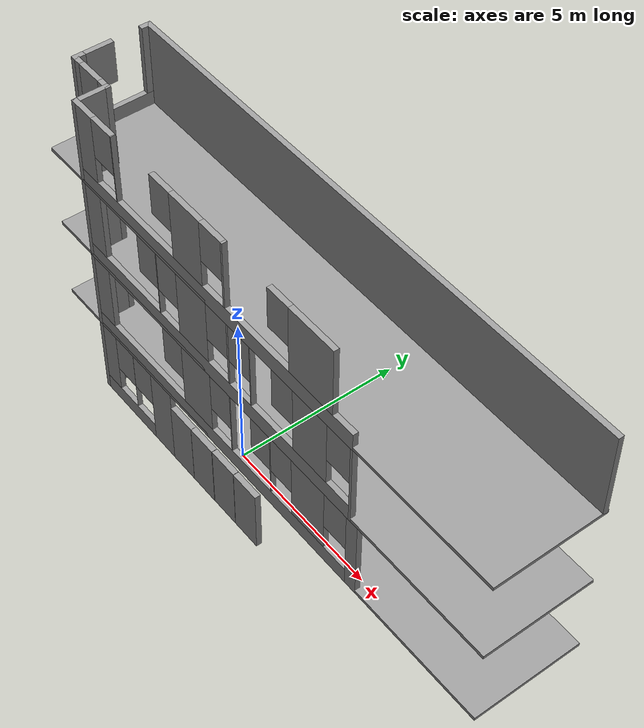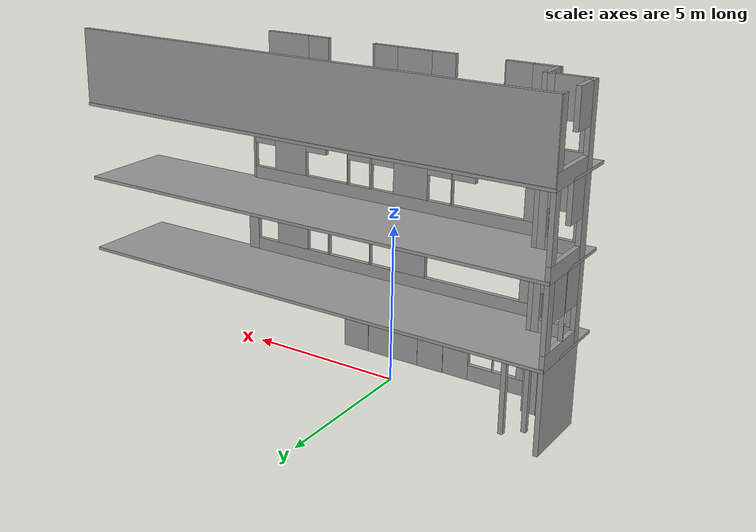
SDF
<sdf version="1.7">
 <model name="multimedia">
  <pose>2.48328 0.104264 0 0 -0 0</pose>
  <link name="Door_0">
   <collision name="Door_0_Collision">
    <geometry><box><size>0.9 0.17 2</size></box></geometry>
    <pose>0 0 1 0 -0 0</pose>
   </collision>
   <visual name="Door_0_Visual">
    <pose>0 0 1 0 -0 0</pose>
    <geometry><box><size>0.9 0.17 2</size></box></geometry>
    <material>
     <script><uri>file://media/materials/scripts/gazebo.material</uri><name>Gazebo/Grey</name></script>
    </material>
   </visual>
   <pose>-1.282 -1.47629 0 0 -0 0</pose>
  </link>
  <link name="Door_1">
   <collision name="Door_1_Collision">
    <geometry><box><size>0.9 0.17 2</size></box></geometry>
    <pose>0 0 1 0 -0 0</pose>
   </collision>
   <visual name="Door_1_Visual">
    <pose>0 0 1 0 -0 0</pose>
    <geometry><box><size>0.9 0.17 2</size></box></geometry>
    <material>
     <script><uri>file://media/materials/scripts/gazebo.material</uri><name>Gazebo/Grey</name></script>
    </material>
   </visual>
   <pose>-0.371814 -1.47629 0 0 -0 0</pose>
  </link>
  <link name="Door_2">
   <collision name="Door_2_Collision">
    <geometry><box><size>0.9 0.17 2</size></box></geometry>
    <pose>0 0 1 0 -0 0</pose>
   </collision>
   <visual name="Door_2_Visual">
    <pose>0 0 1 0 -0 0</pose>
    <geometry><box><size>0.9 0.17 2</size></box></geometry>
    <material>
     <script><uri>file://media/materials/scripts/gazebo.material</uri><name>Gazebo/Grey</name></script>
    </material>
   </visual>
   <pose>-2.19409 -1.48027 0 0 -0 0</pose>
  </link>
  <link name="Door_4">
   <collision name="Door_4_Collision">
    <geometry><box><size>0.9 0.17 2</size></box></geometry>
    <pose>0 0 1 0 -0 0</pose>
   </collision>
   <visual name="Door_4_Visual">
    <pose>0 0 1 0 -0 0</pose>
    <geometry><box><size>0.9 0.17 2</size></box></geometry>
    <material>
     <script><uri>file://media/materials/scripts/gazebo.material</uri><name>Gazebo/Grey</name></script>
    </material>
   </visual>
   <pose>-3.09844 -1.48027 0 0 -0 0</pose>
  </link>
  <link name="Door_8">
   <collision name="Door_8_Collision">
    <geometry><box><size>0.9 0.17 2</size></box></geometry>
    <pose>0 0 1 0 -0 0</pose>
   </collision>
   <visual name="Door_8_Visual">
    <pose>0 0 1 0 -0 0</pose>
    <geometry><box><size>0.9 0.17 2</size></box></geometry>
    <material>
     <script><uri>file://media/materials/scripts/gazebo.material</uri><name>Gazebo/Grey</name></script>
    </material>
   </visual>
   <pose>-7.53633 -0.624894 0 0 -0 0</pose>
  </link>
  <link name="Floor_10">
   <collision name="Floor_10_Collision">
    <geometry><box><size>16.2759 3.1264 0.1</size></box></geometry>
    <pose>0 0 0.05 0 -0 0</pose>
   </collision>
   <visual name="Floor_10_Visual">
    <pose>0 0 0.05 0 -0 0</pose>
    <geometry><box><size>16.2759 3.1264 0.1</size></box></geometry>
    <material>
     <script><uri>file://media/materials/scripts/gazebo.material</uri><name>Gazebo/Grey</name></script>
     <ambient>1 1 1 1</ambient>
    </material>
    <meta><layer>1</layer></meta>
   </visual>
   <pose>0 -0 2.5 0 -0 0</pose>
  </link>
  <link name="Floor_11">
   <collision name="Floor_11_Collision">
    <geometry><box><size>16.2759 3.1264 0.1</size></box></geometry>
    <pose>0 0 0.05 0 -0 0</pose>
   </collision>
   <visual name="Floor_11_Visual">
    <pose>0 0 0.05 0 -0 0</pose>
    <geometry><box><size>16.2759 3.1264 0.1</size></box></geometry>
    <material>
     <script><uri>file://media/materials/scripts/gazebo.material</uri><name>Gazebo/Grey</name></script>
     <ambient>1 1 1 1</ambient>
    </material>
    <meta><layer>2</layer></meta>
   </visual>
   <pose>0 -0 5 0 -0 0</pose>
  </link>
  <link name="Floor_12">
   <collision name="Floor_12_Collision">
    <geometry><box><size>16.2759 3.1264 0.1</size></box></geometry>
    <pose>0 0 0.05 0 -0 0</pose>
   </collision>
   <visual name="Floor_12_Visual">
    <pose>0 0 0.05 0 -0 0</pose>
    <geometry><box><size>16.2759 3.1264 0.1</size></box></geometry>
    <material>
     <script><uri>file://media/materials/scripts/gazebo.material</uri><name>Gazebo/Grey</name></script>
     <ambient>1 1 1 1</ambient>
    </material>
    <meta><layer>3</layer></meta>
   </visual>
   <pose>0 -0 7.5 0 -0 0</pose>
  </link>
  <link name="Wall_100">
   <collision name="Wall_100_Collision">
    <geometry><box><size>16.25 0.15 2.5</size></box></geometry>
    <pose>0 0 1.25 0 -0 0</pose>
   </collision>
   <visual name="Wall_100_Visual">
    <pose>0 0 1.25 0 -0 0</pose>
    <geometry><box><size>16.25 0.15 2.5</size></box></geometry>
    <material>
     <script><uri>file://media/materials/scripts/gazebo.material</uri><name>Gazebo/Grey</name></script>
     <ambient>1 1 1 1</ambient>
    </material>
    <meta><layer>3</layer></meta>
   </visual>
   <pose>0.012948 1.46405 7.5 0 -0 3.14159</pose>
  </link>
  <link name="Wall_101">
   <pose>-1.5307 -1.4882 7.5 0 -0 3.14159</pose>
   <visual name="Wall_101_Visual_0">
    <pose>0 0 0.25 0 -0 0</pose>
    <geometry><box><size>10.5 0.15 0.5</size></box></geometry>
    <material>
     <script><uri>file://media/materials/scripts/gazebo.material</uri><name>Gazebo/Grey</name></script>
     <ambient>1 1 1 1</ambient>
    </material>
    <meta><layer>3</layer></meta>
   </visual>
   <collision name="Wall_101_Collision_0">
    <geometry><box><size>10.5 0.15 0.5</size></box></geometry>
    <pose>0 0 0.25 0 -0 0</pose>
   </collision>
   <visual name="Wall_101_Visual_1">
    <pose>-3.80135 0 1.5 0 -0 0</pose>
    <geometry><box><size>1.53194 0.15 2</size></box></geometry>
    <material>
     <script><uri>file://media/materials/scripts/gazebo.material</uri><name>Gazebo/Grey</name></script>
     <ambient>1 1 1 1</ambient>
    </material>
    <meta><layer>3</layer></meta>
   </visual>
   <collision name="Wall_101_Collision_1">
    <geometry><box><size>1.53194 0.15 2</size></box></geometry>
    <pose>-3.80135 0 1.5 0 -0 0</pose>
   </collision>
   <visual name="Wall_101_Visual_2">
    <pose>-0.670791 0 1.5 0 -0 0</pose>
    <geometry><box><size>0.0625 0.15 2</size></box></geometry>
    <material>
     <script><uri>file://media/materials/scripts/gazebo.material</uri><name>Gazebo/Grey</name></script>
     <ambient>1 1 1 1</ambient>
    </material>
    <meta><layer>3</layer></meta>
   </visual>
   <collision name="Wall_101_Collision_2">
    <geometry><box><size>0.0625 0.15 2</size></box></geometry>
    <pose>-0.670791 0 1.5 0 -0 0</pose>
   </collision>
   <visual name="Wall_101_Visual_3">
    <pose>0.734764 0 1.5 0 -0 0</pose>
    <geometry><box><size>1.14861 0.15 2</size></box></geometry>
    <material>
     <script><uri>file://media/materials/scripts/gazebo.material</uri><name>Gazebo/Grey</name></script>
     <ambient>1 1 1 1</ambient>
    </material>
    <meta><layer>3</layer></meta>
   </visual>
   <collision name="Wall_101_Collision_3">
    <geometry><box><size>1.14861 0.15 2</size></box></geometry>
    <pose>0.734764 0 1.5 0 -0 0</pose>
   </collision>
   <visual name="Wall_101_Visual_4">
    <pose>3.62574 0 1.5 0 -0 0</pose>
    <geometry><box><size>0.030556 0.15 2</size></box></geometry>
    <material>
     <script><uri>file://media/materials/scripts/gazebo.material</uri><name>Gazebo/Grey</name></script>
     <ambient>1 1 1 1</ambient>
    </material>
    <meta><layer>3</layer></meta>
   </visual>
   <collision name="Wall_101_Collision_4">
    <geometry><box><size>0.030556 0.15 2</size></box></geometry>
    <pose>3.62574 0 1.5 0 -0 0</pose>
   </collision>
   <visual name="Wall_101_Visual_5">
    <pose>4.84551 0 1.5 0 -0 0</pose>
    <geometry><box><size>0.808986 0.15 2</size></box></geometry>
    <material>
     <script><uri>file://media/materials/scripts/gazebo.material</uri><name>Gazebo/Grey</name></script>
     <ambient>1 1 1 1</ambient>
    </material>
    <meta><layer>3</layer></meta>
   </visual>
   <collision name="Wall_101_Collision_5">
    <geometry><box><size>0.808986 0.15 2</size></box></geometry>
    <pose>4.84551 0 1.5 0 -0 0</pose>
   </collision>
   <visual name="Wall_101_Visual_6">
    <pose>-2.66801 0 1.9 0 -0 0</pose>
    <geometry><box><size>0.734722 0.15 1.2</size></box></geometry>
    <material>
     <script><uri>file://media/materials/scripts/gazebo.material</uri><name>Gazebo/Grey</name></script>
     <ambient>1 1 1 1</ambient>
    </material>
    <meta><layer>3</layer></meta>
   </visual>
   <collision name="Wall_101_Collision_6">
    <geometry><box><size>0.734722 0.15 1.2</size></box></geometry>
    <pose>-2.66801 0 1.9 0 -0 0</pose>
   </collision>
   <visual name="Wall_101_Visual_7">
    <pose>-0.239541 0 1.9 0 -0 0</pose>
    <geometry><box><size>0.8 0.15 1.2</size></box></geometry>
    <material>
     <script><uri>file://media/materials/scripts/gazebo.material</uri><name>Gazebo/Grey</name></script>
     <ambient>1 1 1 1</ambient>
    </material>
    <meta><layer>3</layer></meta>
   </visual>
   <collision name="Wall_101_Collision_7">
    <geometry><box><size>0.8 0.15 1.2</size></box></geometry>
    <pose>-0.239541 0 1.9 0 -0 0</pose>
   </collision>
   <visual name="Wall_101_Visual_8">
    <pose>1.6924 0 1.9 0 -0 0</pose>
    <geometry><box><size>0.766667 0.15 1.2</size></box></geometry>
    <material>
     <script><uri>file://media/materials/scripts/gazebo.material</uri><name>Gazebo/Grey</name></script>
     <ambient>1 1 1 1</ambient>
    </material>
    <meta><layer>3</layer></meta>
   </visual>
   <collision name="Wall_101_Collision_8">
    <geometry><box><size>0.766667 0.15 1.2</size></box></geometry>
    <pose>1.6924 0 1.9 0 -0 0</pose>
   </collision>
   <visual name="Wall_101_Visual_9">
    <pose>4.04101 0 1.9 0 -0 0</pose>
    <geometry><box><size>0.8 0.15 1.2</size></box></geometry>
    <material>
     <script><uri>file://media/materials/scripts/gazebo.material</uri><name>Gazebo/Grey</name></script>
     <ambient>1 1 1 1</ambient>
    </material>
    <meta><layer>3</layer></meta>
   </visual>
   <collision name="Wall_101_Collision_9">
    <geometry><box><size>0.8 0.15 1.2</size></box></geometry>
    <pose>4.04101 0 1.9 0 -0 0</pose>
   </collision>
  </link>
  <link name="Wall_103">
   <collision name="Wall_103_Collision">
    <geometry><box><size>1 0.15 2.5</size></box></geometry>
    <pose>0 0 1.25 0 -0 0</pose>
   </collision>
   <visual name="Wall_103_Visual">
    <pose>0 0 1.25 0 -0 0</pose>
    <geometry><box><size>1 0.15 2.5</size></box></geometry>
    <material>
     <script><uri>file://media/materials/scripts/gazebo.material</uri><name>Gazebo/Grey</name></script>
     <ambient>1 1 1 1</ambient>
    </material>
    <meta><layer>3</layer></meta>
   </visual>
   <pose>-6.7057 -1.0632 7.5 0 -0 1.5708</pose>
  </link>
  <link name="Wall_104">
   <pose>-8.06295 0.4118 7.5 0 -0 1.5708</pose>
   <visual name="Wall_104_Visual_0">
    <pose>-0.963345 0 1.25 0 -0 0</pose>
    <geometry><box><size>0.323309 0.15 2.5</size></box></geometry>
    <material>
     <script><uri>file://media/materials/scripts/gazebo.material</uri><name>Gazebo/Grey</name></script>
     <ambient>1 1 1 1</ambient>
    </material>
    <meta><layer>3</layer></meta>
   </visual>
   <collision name="Wall_104_Collision_0">
    <geometry><box><size>0.323309 0.15 2.5</size></box></geometry>
    <pose>-0.963345 0 1.25 0 -0 0</pose>
   </collision>
   <visual name="Wall_104_Visual_1">
    <pose>0.161655 0 0.25 0 -0 0</pose>
    <geometry><box><size>1.92669 0.15 0.5</size></box></geometry>
    <material>
     <script><uri>file://media/materials/scripts/gazebo.material</uri><name>Gazebo/Grey</name></script>
     <ambient>1 1 1 1</ambient>
    </material>
    <meta><layer>3</layer></meta>
   </visual>
   <collision name="Wall_104_Collision_1">
    <geometry><box><size>1.92669 0.15 0.5</size></box></geometry>
    <pose>0.161655 0 0.25 0 -0 0</pose>
   </collision>
   <visual name="Wall_104_Visual_2">
    <pose>0.96096 0 1.5 0 -0 0</pose>
    <geometry><box><size>0.32808 0.15 2</size></box></geometry>
    <material>
     <script><uri>file://media/materials/scripts/gazebo.material</uri><name>Gazebo/Grey</name></script>
     <ambient>1 1 1 1</ambient>
    </material>
    <meta><layer>3</layer></meta>
   </visual>
   <collision name="Wall_104_Collision_2">
    <geometry><box><size>0.32808 0.15 2</size></box></geometry>
    <pose>0.96096 0 1.5 0 -0 0</pose>
   </collision>
   <visual name="Wall_104_Visual_3">
    <pose>-0.402385 0 1.9 0 -0 0</pose>
    <geometry><box><size>0.798611 0.15 1.2</size></box></geometry>
    <material>
     <script><uri>file://media/materials/scripts/gazebo.material</uri><name>Gazebo/Grey</name></script>
     <ambient>1 1 1 1</ambient>
    </material>
    <meta><layer>3</layer></meta>
   </visual>
   <collision name="Wall_104_Collision_3">
    <geometry><box><size>0.798611 0.15 1.2</size></box></geometry>
    <pose>-0.402385 0 1.9 0 -0 0</pose>
   </collision>
  </link>
  <link name="Wall_108">
   <pose>-7.3807 -0.6382 7.5 0 -0 3.14159</pose>
   <visual name="Wall_108_Visual_0">
    <pose>-0.569076 0 1.25 0 -0 0</pose>
    <geometry><box><size>0.361847 0.15 2.5</size></box></geometry>
    <material>
     <script><uri>file://media/materials/scripts/gazebo.material</uri><name>Gazebo/Grey</name></script>
     <ambient>1 1 1 1</ambient>
    </material>
    <meta><layer>3</layer></meta>
   </visual>
   <collision name="Wall_108_Collision_0">
    <geometry><box><size>0.361847 0.15 2.5</size></box></geometry>
    <pose>-0.569076 0 1.25 0 -0 0</pose>
   </collision>
   <visual name="Wall_108_Visual_1">
    <pose>0.180924 0 0.25 0 -0 0</pose>
    <geometry><box><size>1.13815 0.15 0.5</size></box></geometry>
    <material>
     <script><uri>file://media/materials/scripts/gazebo.material</uri><name>Gazebo/Grey</name></script>
     <ambient>1 1 1 1</ambient>
    </material>
    <meta><layer>3</layer></meta>
   </visual>
   <collision name="Wall_108_Collision_1">
    <geometry><box><size>1.13815 0.15 0.5</size></box></geometry>
    <pose>0.180924 0 0.25 0 -0 0</pose>
   </collision>
   <visual name="Wall_108_Visual_2">
    <pose>0.580924 0 1.5 0 -0 0</pose>
    <geometry><box><size>0.338153 0.15 2</size></box></geometry>
    <material>
     <script><uri>file://media/materials/scripts/gazebo.material</uri><name>Gazebo/Grey</name></script>
     <ambient>1 1 1 1</ambient>
    </material>
    <meta><layer>3</layer></meta>
   </visual>
   <collision name="Wall_108_Collision_2">
    <geometry><box><size>0.338153 0.15 2</size></box></geometry>
    <pose>0.580924 0 1.5 0 -0 0</pose>
   </collision>
   <visual name="Wall_108_Visual_3">
    <pose>0.011847 0 1.9 0 -0 0</pose>
    <geometry><box><size>0.8 0.15 1.2</size></box></geometry>
    <material>
     <script><uri>file://media/materials/scripts/gazebo.material</uri><name>Gazebo/Grey</name></script>
     <ambient>1 1 1 1</ambient>
    </material>
    <meta><layer>3</layer></meta>
   </visual>
   <collision name="Wall_108_Collision_3">
    <geometry><box><size>0.8 0.15 1.2</size></box></geometry>
    <pose>0.011847 0 1.9 0 -0 0</pose>
   </collision>
  </link>
  <link name="Wall_11">
   <pose>-5.1557 -1.4882 0 0 -0 3.14159</pose>
   <visual name="Wall_11_Visual_0">
    <pose>-1.1799 0 1.25 0 -0 0</pose>
    <geometry><box><size>0.890196 0.15 2.5</size></box></geometry>
    <material>
     <script><uri>file://media/materials/scripts/gazebo.material</uri><name>Gazebo/Grey</name></script>
     <ambient>1 1 1 1</ambient>
    </material>
    <meta><layer>0</layer></meta>
   </visual>
   <collision name="Wall_11_Collision_0">
    <geometry><box><size>0.890196 0.15 2.5</size></box></geometry>
    <pose>-1.1799 0 1.25 0 -0 0</pose>
   </collision>
   <visual name="Wall_11_Visual_1">
    <pose>0.445098 0 0.25 0 -0 0</pose>
    <geometry><box><size>2.3598 0.15 0.5</size></box></geometry>
    <material>
     <script><uri>file://media/materials/scripts/gazebo.material</uri><name>Gazebo/Grey</name></script>
     <ambient>1 1 1 1</ambient>
    </material>
    <meta><layer>0</layer></meta>
   </visual>
   <collision name="Wall_11_Collision_1">
    <geometry><box><size>2.3598 0.15 0.5</size></box></geometry>
    <pose>0.445098 0 0.25 0 -0 0</pose>
   </collision>
   <visual name="Wall_11_Visual_2">
    <pose>0.067696 0 1.5 0 -0 0</pose>
    <geometry><box><size>0.005 0.15 2</size></box></geometry>
    <material>
     <script><uri>file://media/materials/scripts/gazebo.material</uri><name>Gazebo/Grey</name></script>
     <ambient>1 1 1 1</ambient>
    </material>
    <meta><layer>0</layer></meta>
   </visual>
   <collision name="Wall_11_Collision_2">
    <geometry><box><size>0.005 0.15 2</size></box></geometry>
    <pose>0.067696 0 1.5 0 -0 0</pose>
   </collision>
   <visual name="Wall_11_Visual_3">
    <pose>1.2476 0 1.5 0 -0 0</pose>
    <geometry><box><size>0.754804 0.15 2</size></box></geometry>
    <material>
     <script><uri>file://media/materials/scripts/gazebo.material</uri><name>Gazebo/Grey</name></script>
     <ambient>1 1 1 1</ambient>
    </material>
    <meta><layer>0</layer></meta>
   </visual>
   <collision name="Wall_11_Collision_3">
    <geometry><box><size>0.754804 0.15 2</size></box></geometry>
    <pose>1.2476 0 1.5 0 -0 0</pose>
   </collision>
   <visual name="Wall_11_Visual_4">
    <pose>-0.334804 0 1.9 0 -0 0</pose>
    <geometry><box><size>0.8 0.15 1.2</size></box></geometry>
    <material>
     <script><uri>file://media/materials/scripts/gazebo.material</uri><name>Gazebo/Grey</name></script>
     <ambient>1 1 1 1</ambient>
    </material>
    <meta><layer>0</layer></meta>
   </visual>
   <collision name="Wall_11_Collision_4">
    <geometry><box><size>0.8 0.15 1.2</size></box></geometry>
    <pose>-0.334804 0 1.9 0 -0 0</pose>
   </collision>
   <visual name="Wall_11_Visual_5">
    <pose>0.470196 0 1.9 0 -0 0</pose>
    <geometry><box><size>0.8 0.15 1.2</size></box></geometry>
    <material>
     <script><uri>file://media/materials/scripts/gazebo.material</uri><name>Gazebo/Grey</name></script>
     <ambient>1 1 1 1</ambient>
    </material>
    <meta><layer>0</layer></meta>
   </visual>
   <collision name="Wall_11_Collision_5">
    <geometry><box><size>0.8 0.15 1.2</size></box></geometry>
    <pose>0.470196 0 1.9 0 -0 0</pose>
   </collision>
  </link>
  <link name="Wall_45">
   <collision name="Wall_45_Collision">
    <geometry><box><size>1 0.15 2.5</size></box></geometry>
    <pose>0 0 1.25 0 -0 0</pose>
   </collision>
   <visual name="Wall_45_Visual">
    <pose>0 0 1.25 0 -0 0</pose>
    <geometry><box><size>1 0.15 2.5</size></box></geometry>
    <material>
     <script><uri>file://media/materials/scripts/gazebo.material</uri><name>Gazebo/Grey</name></script>
     <ambient>1 1 1 1</ambient>
    </material>
    <meta><layer>0</layer></meta>
   </visual>
   <pose>-6.7057 -1.0632 0 0 -0 1.5708</pose>
  </link>
  <link name="Wall_51">
   <collision name="Wall_51_Collision">
    <geometry><box><size>0.15 0.15 2.5</size></box></geometry>
    <pose>0 0 1.25 0 -0 0</pose>
   </collision>
   <visual name="Wall_51_Visual">
    <pose>0 0 1.25 0 -0 0</pose>
    <geometry><box><size>0.15 0.15 2.5</size></box></geometry>
    <material>
     <script><uri>file://media/materials/scripts/gazebo.material</uri><name>Gazebo/Grey</name></script>
     <ambient>0 0 0 1</ambient>
    </material>
    <meta><layer>0</layer></meta>
   </visual>
   <pose>-6.74318 0.927099 0 0 -0 0</pose>
  </link>
  <link name="Wall_54">
   <collision name="Wall_54_Collision">
    <geometry><box><size>0.15 0.15 2.5</size></box></geometry>
    <pose>0 0 1.25 0 -0 0</pose>
   </collision>
   <visual name="Wall_54_Visual">
    <pose>0 0 1.25 0 -0 0</pose>
    <geometry><box><size>0.15 0.15 2.5</size></box></geometry>
    <material>
     <script><uri>file://media/materials/scripts/gazebo.material</uri><name>Gazebo/Grey</name></script>
     <ambient>0 0 0 1</ambient>
    </material>
    <meta><layer>0</layer></meta>
   </visual>
   <pose>-7.23328 0.463108 0 0 -0 0</pose>
  </link>
  <link name="Wall_61">
   <collision name="Wall_61_Collision">
    <geometry><box><size>2.25 0.15 2.5</size></box></geometry>
    <pose>0 0 1.25 0 -0 0</pose>
   </collision>
   <visual name="Wall_61_Visual">
    <pose>0 0 1.25 0 -0 0</pose>
    <geometry><box><size>2.25 0.15 2.5</size></box></geometry>
    <material>
     <script><uri>file://media/materials/scripts/gazebo.material</uri><name>Gazebo/Grey</name></script>
     <ambient>1 1 1 1</ambient>
    </material>
    <meta><layer>0</layer></meta>
   </visual>
   <pose>-8.06295 0.4118 0 0 -0 1.5708</pose>
  </link>
  <link name="Wall_71">
   <collision name="Wall_71_Collision">
    <geometry><box><size>0.5 0.15 2.5</size></box></geometry>
    <pose>0 0 1.25 0 -0 0</pose>
   </collision>
   <visual name="Wall_71_Visual">
    <pose>0 0 1.25 0 -0 0</pose>
    <geometry><box><size>0.5 0.15 2.5</size></box></geometry>
    <material>
     <script><uri>file://media/materials/scripts/gazebo.material</uri><name>Gazebo/Grey</name></script>
     <ambient>1 1 1 1</ambient>
    </material>
    <meta><layer>0</layer></meta>
   </visual>
   <pose>-6.8807 -0.6382 0 0 -0 3.14159</pose>
  </link>
  <link name="Wall_83">
   <pose>-1.4057 -1.4882 2.5 0 -0 3.14159</pose>
   <visual name="Wall_83_Visual_0">
    <pose>-5.18088 0 1.25 0 -0 0</pose>
    <geometry><box><size>0.388237 0.15 2.5</size></box></geometry>
    <material>
     <script><uri>file://media/materials/scripts/gazebo.material</uri><name>Gazebo/Grey</name></script>
     <ambient>1 1 1 1</ambient>
    </material>
    <meta><layer>1</layer></meta>
   </visual>
   <collision name="Wall_83_Collision_0">
    <geometry><box><size>0.388237 0.15 2.5</size></box></geometry>
    <pose>-5.18088 0 1.25 0 -0 0</pose>
   </collision>
   <visual name="Wall_83_Visual_1">
    <pose>0.194118 0 0.25 0 -0 0</pose>
    <geometry><box><size>10.3618 0.15 0.5</size></box></geometry>
    <material>
     <script><uri>file://media/materials/scripts/gazebo.material</uri><name>Gazebo/Grey</name></script>
     <ambient>1 1 1 1</ambient>
    </material>
    <meta><layer>1</layer></meta>
   </visual>
   <collision name="Wall_83_Collision_1">
    <geometry><box><size>10.3618 0.15 0.5</size></box></geometry>
    <pose>0.194118 0 0.25 0 -0 0</pose>
   </collision>
   <visual name="Wall_83_Visual_2">
    <pose>-3.58051 0 1.5 0 -0 0</pose>
    <geometry><box><size>1.2125 0.15 2</size></box></geometry>
    <material>
     <script><uri>file://media/materials/scripts/gazebo.material</uri><name>Gazebo/Grey</name></script>
     <ambient>1 1 1 1</ambient>
    </material>
    <meta><layer>1</layer></meta>
   </visual>
   <collision name="Wall_83_Collision_2">
    <geometry><box><size>1.2125 0.15 2</size></box></geometry>
    <pose>-3.58051 0 1.5 0 -0 0</pose>
   </collision>
   <visual name="Wall_83_Visual_3">
    <pose>-2.15899 0 1.5 0 -0 0</pose>
    <geometry><box><size>0.030555 0.15 2</size></box></geometry>
    <material>
     <script><uri>file://media/materials/scripts/gazebo.material</uri><name>Gazebo/Grey</name></script>
     <ambient>1 1 1 1</ambient>
    </material>
    <meta><layer>1</layer></meta>
   </visual>
   <collision name="Wall_83_Collision_3">
    <geometry><box><size>0.030555 0.15 2</size></box></geometry>
    <pose>-2.15899 0 1.5 0 -0 0</pose>
   </collision>
   <visual name="Wall_83_Visual_4">
    <pose>-0.593708 0 1.5 0 -0 0</pose>
    <geometry><box><size>0.030555 0.15 2</size></box></geometry>
    <material>
     <script><uri>file://media/materials/scripts/gazebo.material</uri><name>Gazebo/Grey</name></script>
     <ambient>1 1 1 1</ambient>
    </material>
    <meta><layer>1</layer></meta>
   </visual>
   <collision name="Wall_83_Collision_4">
    <geometry><box><size>0.030555 0.15 2</size></box></geometry>
    <pose>-0.593708 0 1.5 0 -0 0</pose>
   </collision>
   <visual name="Wall_83_Visual_5">
    <pose>0.811848 0 1.5 0 -0 0</pose>
    <geometry><box><size>1.18056 0.15 2</size></box></geometry>
    <material>
     <script><uri>file://media/materials/scripts/gazebo.material</uri><name>Gazebo/Grey</name></script>
     <ambient>1 1 1 1</ambient>
    </material>
    <meta><layer>1</layer></meta>
   </visual>
   <collision name="Wall_83_Collision_5">
    <geometry><box><size>1.18056 0.15 2</size></box></geometry>
    <pose>0.811848 0 1.5 0 -0 0</pose>
   </collision>
   <visual name="Wall_83_Visual_6">
    <pose>4.97051 0 1.5 0 -0 0</pose>
    <geometry><box><size>0.808986 0.15 2</size></box></geometry>
    <material>
     <script><uri>file://media/materials/scripts/gazebo.material</uri><name>Gazebo/Grey</name></script>
     <ambient>1 1 1 1</ambient>
    </material>
    <meta><layer>1</layer></meta>
   </visual>
   <collision name="Wall_83_Collision_6">
    <geometry><box><size>0.808986 0.15 2</size></box></geometry>
    <pose>4.97051 0 1.5 0 -0 0</pose>
   </collision>
   <visual name="Wall_83_Visual_7">
    <pose>-4.58676 0 1.9 0 -0 0</pose>
    <geometry><box><size>0.8 0.15 1.2</size></box></geometry>
    <material>
     <script><uri>file://media/materials/scripts/gazebo.material</uri><name>Gazebo/Grey</name></script>
     <ambient>1 1 1 1</ambient>
    </material>
    <meta><layer>1</layer></meta>
   </visual>
   <collision name="Wall_83_Collision_7">
    <geometry><box><size>0.8 0.15 1.2</size></box></geometry>
    <pose>-4.58676 0 1.9 0 -0 0</pose>
   </collision>
   <visual name="Wall_83_Visual_8">
    <pose>-2.57426 0 1.9 0 -0 0</pose>
    <geometry><box><size>0.8 0.15 1.2</size></box></geometry>
    <material>
     <script><uri>file://media/materials/scripts/gazebo.material</uri><name>Gazebo/Grey</name></script>
     <ambient>1 1 1 1</ambient>
    </material>
    <meta><layer>1</layer></meta>
   </visual>
   <collision name="Wall_83_Collision_8">
    <geometry><box><size>0.8 0.15 1.2</size></box></geometry>
    <pose>-2.57426 0 1.9 0 -0 0</pose>
   </collision>
   <visual name="Wall_83_Visual_9">
    <pose>-1.77635 0 1.9 0 -0 0</pose>
    <geometry><box><size>0.734722 0.15 1.2</size></box></geometry>
    <material>
     <script><uri>file://media/materials/scripts/gazebo.material</uri><name>Gazebo/Grey</name></script>
     <ambient>1 1 1 1</ambient>
    </material>
    <meta><layer>1</layer></meta>
   </visual>
   <collision name="Wall_83_Collision_9">
    <geometry><box><size>0.734722 0.15 1.2</size></box></geometry>
    <pose>-1.77635 0 1.9 0 -0 0</pose>
   </collision>
   <visual name="Wall_83_Visual_10">
    <pose>-0.17843 0 1.9 0 -0 0</pose>
    <geometry><box><size>0.8 0.15 1.2</size></box></geometry>
    <material>
     <script><uri>file://media/materials/scripts/gazebo.material</uri><name>Gazebo/Grey</name></script>
     <ambient>1 1 1 1</ambient>
    </material>
    <meta><layer>1</layer></meta>
   </visual>
   <collision name="Wall_83_Collision_10">
    <geometry><box><size>0.8 0.15 1.2</size></box></geometry>
    <pose>-0.17843 0 1.9 0 -0 0</pose>
   </collision>
   <visual name="Wall_83_Visual_11">
    <pose>1.80143 0 1.9 0 -0 0</pose>
    <geometry><box><size>0.798611 0.15 1.2</size></box></geometry>
    <material>
     <script><uri>file://media/materials/scripts/gazebo.material</uri><name>Gazebo/Grey</name></script>
     <ambient>1 1 1 1</ambient>
    </material>
    <meta><layer>1</layer></meta>
   </visual>
   <collision name="Wall_83_Collision_11">
    <geometry><box><size>0.798611 0.15 1.2</size></box></geometry>
    <pose>1.80143 0 1.9 0 -0 0</pose>
   </collision>
  </link>
  <link name="Wall_85">
   <collision name="Wall_85_Collision">
    <geometry><box><size>1 0.15 2.5</size></box></geometry>
    <pose>0 0 1.25 0 -0 0</pose>
   </collision>
   <visual name="Wall_85_Visual">
    <pose>0 0 1.25 0 -0 0</pose>
    <geometry><box><size>1 0.15 2.5</size></box></geometry>
    <material>
     <script><uri>file://media/materials/scripts/gazebo.material</uri><name>Gazebo/Grey</name></script>
     <ambient>1 1 1 1</ambient>
    </material>
    <meta><layer>1</layer></meta>
   </visual>
   <pose>-6.7057 -1.0632 2.5 0 -0 1.5708</pose>
  </link>
  <link name="Wall_86">
   <pose>-8.06295 0.4118 2.5 0 -0 1.5708</pose>
   <visual name="Wall_86_Visual_0">
    <pose>-0.979318 0 1.25 0 -0 0</pose>
    <geometry><box><size>0.291365 0.15 2.5</size></box></geometry>
    <material>
     <script><uri>file://media/materials/scripts/gazebo.material</uri><name>Gazebo/Grey</name></script>
     <ambient>1 1 1 1</ambient>
    </material>
    <meta><layer>1</layer></meta>
   </visual>
   <collision name="Wall_86_Collision_0">
    <geometry><box><size>0.291365 0.15 2.5</size></box></geometry>
    <pose>-0.979318 0 1.25 0 -0 0</pose>
   </collision>
   <visual name="Wall_86_Visual_1">
    <pose>0.145682 0 0.25 0 -0 0</pose>
    <geometry><box><size>1.95863 0.15 0.5</size></box></geometry>
    <material>
     <script><uri>file://media/materials/scripts/gazebo.material</uri><name>Gazebo/Grey</name></script>
     <ambient>1 1 1 1</ambient>
    </material>
    <meta><layer>1</layer></meta>
   </visual>
   <collision name="Wall_86_Collision_1">
    <geometry><box><size>1.95863 0.15 0.5</size></box></geometry>
    <pose>0.145682 0 0.25 0 -0 0</pose>
   </collision>
   <visual name="Wall_86_Visual_2">
    <pose>-0.018358 0 1.5 0 -0 0</pose>
    <geometry><box><size>0.030556 0.15 2</size></box></geometry>
    <material>
     <script><uri>file://media/materials/scripts/gazebo.material</uri><name>Gazebo/Grey</name></script>
     <ambient>1 1 1 1</ambient>
    </material>
    <meta><layer>1</layer></meta>
   </visual>
   <collision name="Wall_86_Collision_2">
    <geometry><box><size>0.030556 0.15 2</size></box></geometry>
    <pose>-0.018358 0 1.5 0 -0 0</pose>
   </collision>
   <visual name="Wall_86_Visual_3">
    <pose>0.96096 0 1.5 0 -0 0</pose>
    <geometry><box><size>0.32808 0.15 2</size></box></geometry>
    <material>
     <script><uri>file://media/materials/scripts/gazebo.material</uri><name>Gazebo/Grey</name></script>
     <ambient>1 1 1 1</ambient>
    </material>
    <meta><layer>1</layer></meta>
   </visual>
   <collision name="Wall_86_Collision_3">
    <geometry><box><size>0.32808 0.15 2</size></box></geometry>
    <pose>0.96096 0 1.5 0 -0 0</pose>
   </collision>
   <visual name="Wall_86_Visual_4">
    <pose>-0.433635 0 1.9 0 -0 0</pose>
    <geometry><box><size>0.8 0.15 1.2</size></box></geometry>
    <material>
     <script><uri>file://media/materials/scripts/gazebo.material</uri><name>Gazebo/Grey</name></script>
     <ambient>1 1 1 1</ambient>
    </material>
    <meta><layer>1</layer></meta>
   </visual>
   <collision name="Wall_86_Collision_4">
    <geometry><box><size>0.8 0.15 1.2</size></box></geometry>
    <pose>-0.433635 0 1.9 0 -0 0</pose>
   </collision>
   <visual name="Wall_86_Visual_5">
    <pose>0.39692 0 1.9 0 -0 0</pose>
    <geometry><box><size>0.8 0.15 1.2</size></box></geometry>
    <material>
     <script><uri>file://media/materials/scripts/gazebo.material</uri><name>Gazebo/Grey</name></script>
     <ambient>1 1 1 1</ambient>
    </material>
    <meta><layer>1</layer></meta>
   </visual>
   <collision name="Wall_86_Collision_5">
    <geometry><box><size>0.8 0.15 1.2</size></box></geometry>
    <pose>0.39692 0 1.9 0 -0 0</pose>
   </collision>
  </link>
  <link name="Wall_90">
   <pose>-7.3807 -0.6382 2.5 0 -0 3.14159</pose>
   <visual name="Wall_90_Visual_0">
    <pose>-0.569076 0 1.25 0 -0 0</pose>
    <geometry><box><size>0.361847 0.15 2.5</size></box></geometry>
    <material>
     <script><uri>file://media/materials/scripts/gazebo.material</uri><name>Gazebo/Grey</name></script>
     <ambient>1 1 1 1</ambient>
    </material>
    <meta><layer>1</layer></meta>
   </visual>
   <collision name="Wall_90_Collision_0">
    <geometry><box><size>0.361847 0.15 2.5</size></box></geometry>
    <pose>-0.569076 0 1.25 0 -0 0</pose>
   </collision>
   <visual name="Wall_90_Visual_1">
    <pose>0.180924 0 0.25 0 -0 0</pose>
    <geometry><box><size>1.13815 0.15 0.5</size></box></geometry>
    <material>
     <script><uri>file://media/materials/scripts/gazebo.material</uri><name>Gazebo/Grey</name></script>
     <ambient>1 1 1 1</ambient>
    </material>
    <meta><layer>1</layer></meta>
   </visual>
   <collision name="Wall_90_Collision_1">
    <geometry><box><size>1.13815 0.15 0.5</size></box></geometry>
    <pose>0.180924 0 0.25 0 -0 0</pose>
   </collision>
   <visual name="Wall_90_Visual_2">
    <pose>0.580924 0 1.5 0 -0 0</pose>
    <geometry><box><size>0.338153 0.15 2</size></box></geometry>
    <material>
     <script><uri>file://media/materials/scripts/gazebo.material</uri><name>Gazebo/Grey</name></script>
     <ambient>1 1 1 1</ambient>
    </material>
    <meta><layer>1</layer></meta>
   </visual>
   <collision name="Wall_90_Collision_2">
    <geometry><box><size>0.338153 0.15 2</size></box></geometry>
    <pose>0.580924 0 1.5 0 -0 0</pose>
   </collision>
   <visual name="Wall_90_Visual_3">
    <pose>0.011847 0 1.9 0 -0 0</pose>
    <geometry><box><size>0.8 0.15 1.2</size></box></geometry>
    <material>
     <script><uri>file://media/materials/scripts/gazebo.material</uri><name>Gazebo/Grey</name></script>
     <ambient>1 1 1 1</ambient>
    </material>
    <meta><layer>1</layer></meta>
   </visual>
   <collision name="Wall_90_Collision_3">
    <geometry><box><size>0.8 0.15 1.2</size></box></geometry>
    <pose>0.011847 0 1.9 0 -0 0</pose>
   </collision>
  </link>
  <link name="Wall_92">
   <pose>-1.5307 -1.4882 5 0 -0 3.14159</pose>
   <visual name="Wall_92_Visual_0">
    <pose>-5.21283 0 1.25 0 -0 0</pose>
    <geometry><box><size>0.074348 0.15 2.5</size></box></geometry>
    <material>
     <script><uri>file://media/materials/scripts/gazebo.material</uri><name>Gazebo/Grey</name></script>
     <ambient>1 1 1 1</ambient>
    </material>
    <meta><layer>2</layer></meta>
   </visual>
   <collision name="Wall_92_Collision_0">
    <geometry><box><size>0.074348 0.15 2.5</size></box></geometry>
    <pose>-5.21283 0 1.25 0 -0 0</pose>
   </collision>
   <visual name="Wall_92_Visual_1">
    <pose>0.037174 0 0.25 0 -0 0</pose>
    <geometry><box><size>10.4257 0.15 0.5</size></box></geometry>
    <material>
     <script><uri>file://media/materials/scripts/gazebo.material</uri><name>Gazebo/Grey</name></script>
     <ambient>1 1 1 1</ambient>
    </material>
    <meta><layer>2</layer></meta>
   </visual>
   <collision name="Wall_92_Collision_1">
    <geometry><box><size>10.4257 0.15 0.5</size></box></geometry>
    <pose>0.037174 0 0.25 0 -0 0</pose>
   </collision>
   <visual name="Wall_92_Visual_2">
    <pose>-3.7694 0 1.5 0 -0 0</pose>
    <geometry><box><size>1.2125 0.15 2</size></box></geometry>
    <material>
     <script><uri>file://media/materials/scripts/gazebo.material</uri><name>Gazebo/Grey</name></script>
     <ambient>1 1 1 1</ambient>
    </material>
    <meta><layer>2</layer></meta>
   </visual>
   <collision name="Wall_92_Collision_2">
    <geometry><box><size>1.2125 0.15 2</size></box></geometry>
    <pose>-3.7694 0 1.5 0 -0 0</pose>
   </collision>
   <visual name="Wall_92_Visual_3">
    <pose>-1.58121 0 1.5 0 -0 0</pose>
    <geometry><box><size>0.030555 0.15 2</size></box></geometry>
    <material>
     <script><uri>file://media/materials/scripts/gazebo.material</uri><name>Gazebo/Grey</name></script>
     <ambient>1 1 1 1</ambient>
    </material>
    <meta><layer>2</layer></meta>
   </visual>
   <collision name="Wall_92_Collision_3">
    <geometry><box><size>0.030555 0.15 2</size></box></geometry>
    <pose>-1.58121 0 1.5 0 -0 0</pose>
   </collision>
   <visual name="Wall_92_Visual_4">
    <pose>-0.73468 0 1.5 0 -0 0</pose>
    <geometry><box><size>0.0625 0.15 2</size></box></geometry>
    <material>
     <script><uri>file://media/materials/scripts/gazebo.material</uri><name>Gazebo/Grey</name></script>
     <ambient>1 1 1 1</ambient>
    </material>
    <meta><layer>2</layer></meta>
   </visual>
   <collision name="Wall_92_Collision_4">
    <geometry><box><size>0.0625 0.15 2</size></box></geometry>
    <pose>-0.73468 0 1.5 0 -0 0</pose>
   </collision>
   <visual name="Wall_92_Visual_5">
    <pose>0.686848 0 1.5 0 -0 0</pose>
    <geometry><box><size>1.18056 0.15 2</size></box></geometry>
    <material>
     <script><uri>file://media/materials/scripts/gazebo.material</uri><name>Gazebo/Grey</name></script>
     <ambient>1 1 1 1</ambient>
    </material>
    <meta><layer>2</layer></meta>
   </visual>
   <collision name="Wall_92_Collision_5">
    <geometry><box><size>1.18056 0.15 2</size></box></geometry>
    <pose>0.686848 0 1.5 0 -0 0</pose>
   </collision>
   <visual name="Wall_92_Visual_6">
    <pose>2.0924 0 1.5 0 -0 0</pose>
    <geometry><box><size>0.030556 0.15 2</size></box></geometry>
    <material>
     <script><uri>file://media/materials/scripts/gazebo.material</uri><name>Gazebo/Grey</name></script>
     <ambient>1 1 1 1</ambient>
    </material>
    <meta><layer>2</layer></meta>
   </visual>
   <collision name="Wall_92_Collision_6">
    <geometry><box><size>0.030556 0.15 2</size></box></geometry>
    <pose>2.0924 0 1.5 0 -0 0</pose>
   </collision>
   <visual name="Wall_92_Visual_7">
    <pose>4.84551 0 1.5 0 -0 0</pose>
    <geometry><box><size>0.808986 0.15 2</size></box></geometry>
    <material>
     <script><uri>file://media/materials/scripts/gazebo.material</uri><name>Gazebo/Grey</name></script>
     <ambient>1 1 1 1</ambient>
    </material>
    <meta><layer>2</layer></meta>
   </visual>
   <collision name="Wall_92_Collision_7">
    <geometry><box><size>0.808986 0.15 2</size></box></geometry>
    <pose>4.84551 0 1.5 0 -0 0</pose>
   </collision>
   <visual name="Wall_92_Visual_8">
    <pose>-4.77565 0 1.9 0 -0 0</pose>
    <geometry><box><size>0.8 0.15 1.2</size></box></geometry>
    <material>
     <script><uri>file://media/materials/scripts/gazebo.material</uri><name>Gazebo/Grey</name></script>
     <ambient>1 1 1 1</ambient>
    </material>
    <meta><layer>2</layer></meta>
   </visual>
   <collision name="Wall_92_Collision_8">
    <geometry><box><size>0.8 0.15 1.2</size></box></geometry>
    <pose>-4.77565 0 1.9 0 -0 0</pose>
   </collision>
   <visual name="Wall_92_Visual_9">
    <pose>-2.77982 0 1.9 0 -0 0</pose>
    <geometry><box><size>0.766667 0.15 1.2</size></box></geometry>
    <material>
     <script><uri>file://media/materials/scripts/gazebo.material</uri><name>Gazebo/Grey</name></script>
     <ambient>1 1 1 1</ambient>
    </material>
    <meta><layer>2</layer></meta>
   </visual>
   <collision name="Wall_92_Collision_9">
    <geometry><box><size>0.766667 0.15 1.2</size></box></geometry>
    <pose>-2.77982 0 1.9 0 -0 0</pose>
   </collision>
   <visual name="Wall_92_Visual_10">
    <pose>-1.16593 0 1.9 0 -0 0</pose>
    <geometry><box><size>0.8 0.15 1.2</size></box></geometry>
    <material>
     <script><uri>file://media/materials/scripts/gazebo.material</uri><name>Gazebo/Grey</name></script>
     <ambient>1 1 1 1</ambient>
    </material>
    <meta><layer>2</layer></meta>
   </visual>
   <collision name="Wall_92_Collision_10">
    <geometry><box><size>0.8 0.15 1.2</size></box></geometry>
    <pose>-1.16593 0 1.9 0 -0 0</pose>
   </collision>
   <visual name="Wall_92_Visual_11">
    <pose>-0.30343 0 1.9 0 -0 0</pose>
    <geometry><box><size>0.8 0.15 1.2</size></box></geometry>
    <material>
     <script><uri>file://media/materials/scripts/gazebo.material</uri><name>Gazebo/Grey</name></script>
     <ambient>1 1 1 1</ambient>
    </material>
    <meta><layer>2</layer></meta>
   </visual>
   <collision name="Wall_92_Collision_11">
    <geometry><box><size>0.8 0.15 1.2</size></box></geometry>
    <pose>-0.30343 0 1.9 0 -0 0</pose>
   </collision>
   <visual name="Wall_92_Visual_12">
    <pose>1.67712 0 1.9 0 -0 0</pose>
    <geometry><box><size>0.8 0.15 1.2</size></box></geometry>
    <material>
     <script><uri>file://media/materials/scripts/gazebo.material</uri><name>Gazebo/Grey</name></script>
     <ambient>1 1 1 1</ambient>
    </material>
    <meta><layer>2</layer></meta>
   </visual>
   <collision name="Wall_92_Collision_12">
    <geometry><box><size>0.8 0.15 1.2</size></box></geometry>
    <pose>1.67712 0 1.9 0 -0 0</pose>
   </collision>
   <visual name="Wall_92_Visual_13">
    <pose>2.49101 0 1.9 0 -0 0</pose>
    <geometry><box><size>0.766667 0.15 1.2</size></box></geometry>
    <material>
     <script><uri>file://media/materials/scripts/gazebo.material</uri><name>Gazebo/Grey</name></script>
     <ambient>1 1 1 1</ambient>
    </material>
    <meta><layer>2</layer></meta>
   </visual>
   <collision name="Wall_92_Collision_13">
    <geometry><box><size>0.766667 0.15 1.2</size></box></geometry>
    <pose>2.49101 0 1.9 0 -0 0</pose>
   </collision>
  </link>
  <link name="Wall_94">
   <collision name="Wall_94_Collision">
    <geometry><box><size>1 0.15 2.5</size></box></geometry>
    <pose>0 0 1.25 0 -0 0</pose>
   </collision>
   <visual name="Wall_94_Visual">
    <pose>0 0 1.25 0 -0 0</pose>
    <geometry><box><size>1 0.15 2.5</size></box></geometry>
    <material>
     <script><uri>file://media/materials/scripts/gazebo.material</uri><name>Gazebo/Grey</name></script>
     <ambient>1 1 1 1</ambient>
    </material>
    <meta><layer>2</layer></meta>
   </visual>
   <pose>-6.7057 -1.0632 5 0 -0 1.5708</pose>
  </link>
  <link name="Wall_95">
   <pose>-8.06295 0.4118 5 0 -0 1.5708</pose>
   <visual name="Wall_95_Visual_0">
    <pose>-0.931401 0 1.25 0 -0 0</pose>
    <geometry><box><size>0.387198 0.15 2.5</size></box></geometry>
    <material>
     <script><uri>file://media/materials/scripts/gazebo.material</uri><name>Gazebo/Grey</name></script>
     <ambient>1 1 1 1</ambient>
    </material>
    <meta><layer>2</layer></meta>
   </visual>
   <collision name="Wall_95_Collision_0">
    <geometry><box><size>0.387198 0.15 2.5</size></box></geometry>
    <pose>-0.931401 0 1.25 0 -0 0</pose>
   </collision>
   <visual name="Wall_95_Visual_1">
    <pose>0.193599 0 0.25 0 -0 0</pose>
    <geometry><box><size>1.8628 0.15 0.5</size></box></geometry>
    <material>
     <script><uri>file://media/materials/scripts/gazebo.material</uri><name>Gazebo/Grey</name></script>
     <ambient>1 1 1 1</ambient>
    </material>
    <meta><layer>2</layer></meta>
   </visual>
   <collision name="Wall_95_Collision_1">
    <geometry><box><size>1.8628 0.15 0.5</size></box></geometry>
    <pose>0.193599 0 0.25 0 -0 0</pose>
   </collision>
   <visual name="Wall_95_Visual_2">
    <pose>0.976932 0 1.5 0 -0 0</pose>
    <geometry><box><size>0.296135 0.15 2</size></box></geometry>
    <material>
     <script><uri>file://media/materials/scripts/gazebo.material</uri><name>Gazebo/Grey</name></script>
     <ambient>1 1 1 1</ambient>
    </material>
    <meta><layer>2</layer></meta>
   </visual>
   <collision name="Wall_95_Collision_2">
    <geometry><box><size>0.296135 0.15 2</size></box></geometry>
    <pose>0.976932 0 1.5 0 -0 0</pose>
   </collision>
   <visual name="Wall_95_Visual_3">
    <pose>-0.354469 0 1.9 0 -0 0</pose>
    <geometry><box><size>0.766667 0.15 1.2</size></box></geometry>
    <material>
     <script><uri>file://media/materials/scripts/gazebo.material</uri><name>Gazebo/Grey</name></script>
     <ambient>1 1 1 1</ambient>
    </material>
    <meta><layer>2</layer></meta>
   </visual>
   <collision name="Wall_95_Collision_3">
    <geometry><box><size>0.766667 0.15 1.2</size></box></geometry>
    <pose>-0.354469 0 1.9 0 -0 0</pose>
   </collision>
  </link>
  <link name="Wall_99">
   <pose>-7.3807 -0.6382 5 0 -0 3.14159</pose>
   <visual name="Wall_99_Visual_0">
    <pose>-0.553104 0 1.25 0 -0 0</pose>
    <geometry><box><size>0.393792 0.15 2.5</size></box></geometry>
    <material>
     <script><uri>file://media/materials/scripts/gazebo.material</uri><name>Gazebo/Grey</name></script>
     <ambient>1 1 1 1</ambient>
    </material>
    <meta><layer>2</layer></meta>
   </visual>
   <collision name="Wall_99_Collision_0">
    <geometry><box><size>0.393792 0.15 2.5</size></box></geometry>
    <pose>-0.553104 0 1.25 0 -0 0</pose>
   </collision>
   <visual name="Wall_99_Visual_1">
    <pose>0.196896 0 0.25 0 -0 0</pose>
    <geometry><box><size>1.10621 0.15 0.5</size></box></geometry>
    <material>
     <script><uri>file://media/materials/scripts/gazebo.material</uri><name>Gazebo/Grey</name></script>
     <ambient>1 1 1 1</ambient>
    </material>
    <meta><layer>2</layer></meta>
   </visual>
   <collision name="Wall_99_Collision_1">
    <geometry><box><size>1.10621 0.15 0.5</size></box></geometry>
    <pose>0.196896 0 0.25 0 -0 0</pose>
   </collision>
   <visual name="Wall_99_Visual_2">
    <pose>0.596896 0 1.5 0 -0 0</pose>
    <geometry><box><size>0.306208 0.15 2</size></box></geometry>
    <material>
     <script><uri>file://media/materials/scripts/gazebo.material</uri><name>Gazebo/Grey</name></script>
     <ambient>1 1 1 1</ambient>
    </material>
    <meta><layer>2</layer></meta>
   </visual>
   <collision name="Wall_99_Collision_2">
    <geometry><box><size>0.306208 0.15 2</size></box></geometry>
    <pose>0.596896 0 1.5 0 -0 0</pose>
   </collision>
   <visual name="Wall_99_Visual_3">
    <pose>0.043792 0 1.9 0 -0 0</pose>
    <geometry><box><size>0.8 0.15 1.2</size></box></geometry>
    <material>
     <script><uri>file://media/materials/scripts/gazebo.material</uri><name>Gazebo/Grey</name></script>
     <ambient>1 1 1 1</ambient>
    </material>
    <meta><layer>2</layer></meta>
   </visual>
   <collision name="Wall_99_Collision_3">
    <geometry><box><size>0.8 0.15 1.2</size></box></geometry>
    <pose>0.043792 0 1.9 0 -0 0</pose>
   </collision>
  </link>
  <static>1</static>
 </model>
</sdf>
